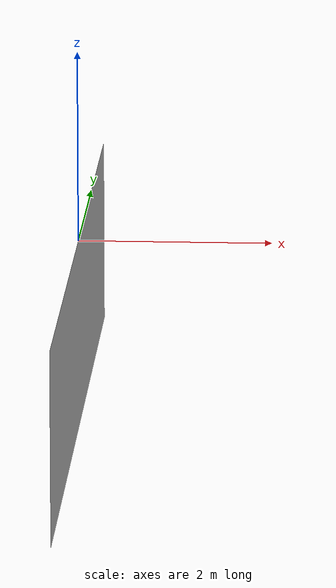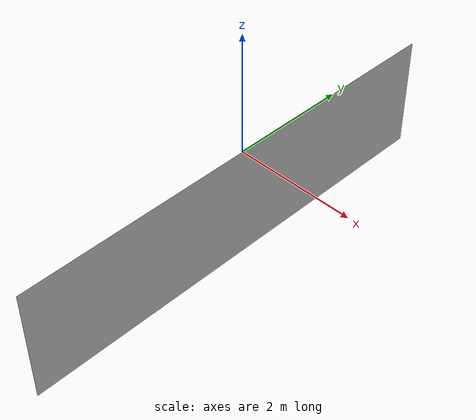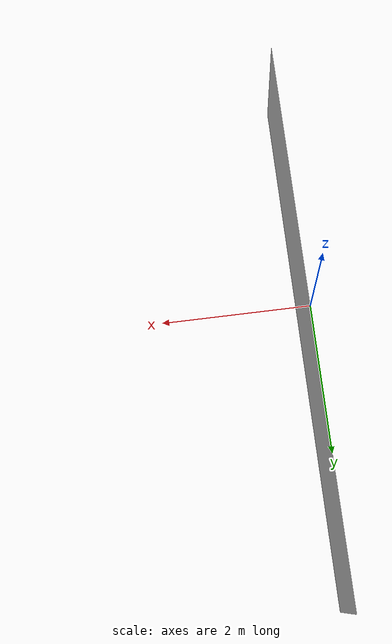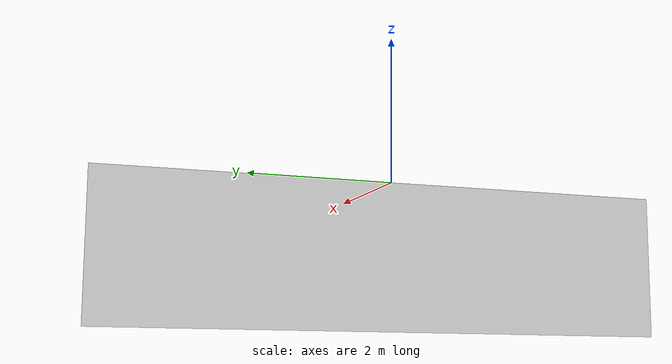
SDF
<?xml version='1.0' encoding='UTF8'?>
<sdf version="1.6">
  <model name="Logo">
    <pose>0 0 0 0 0 0</pose>
    <static>true</static>
    <link name="link">
      <visual name="visual">
        <geometry>
          <mesh>
            <uri>model://rover_sim/models/names/Logo/meshes/mesh_name.dae</uri>
          </mesh>
        </geometry>
      </visual>
    </link>
  </model>
</sdf>
